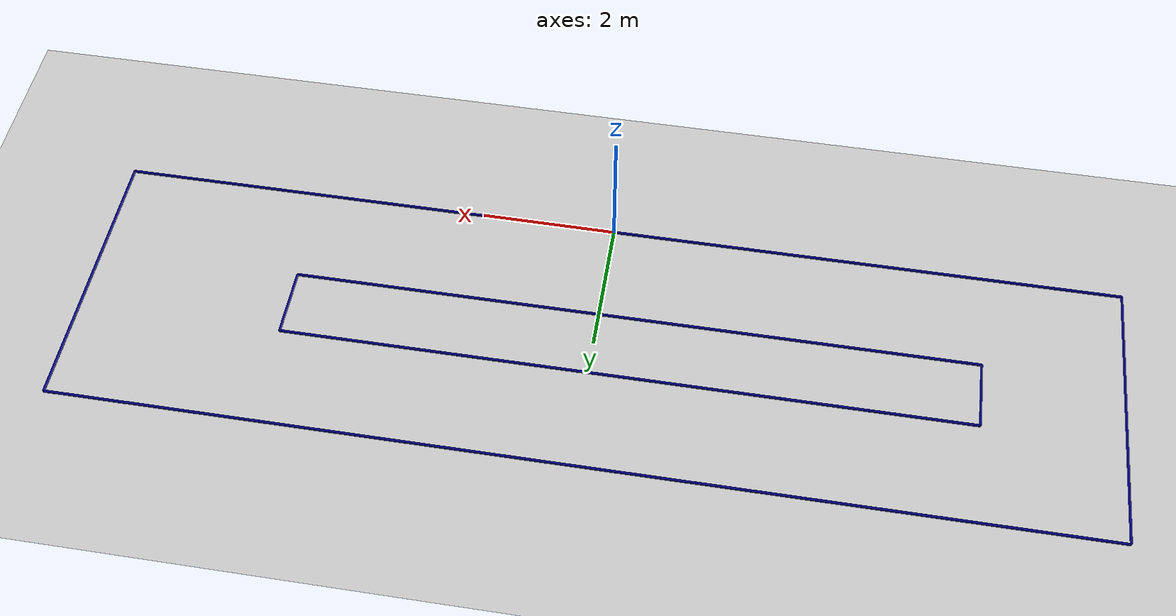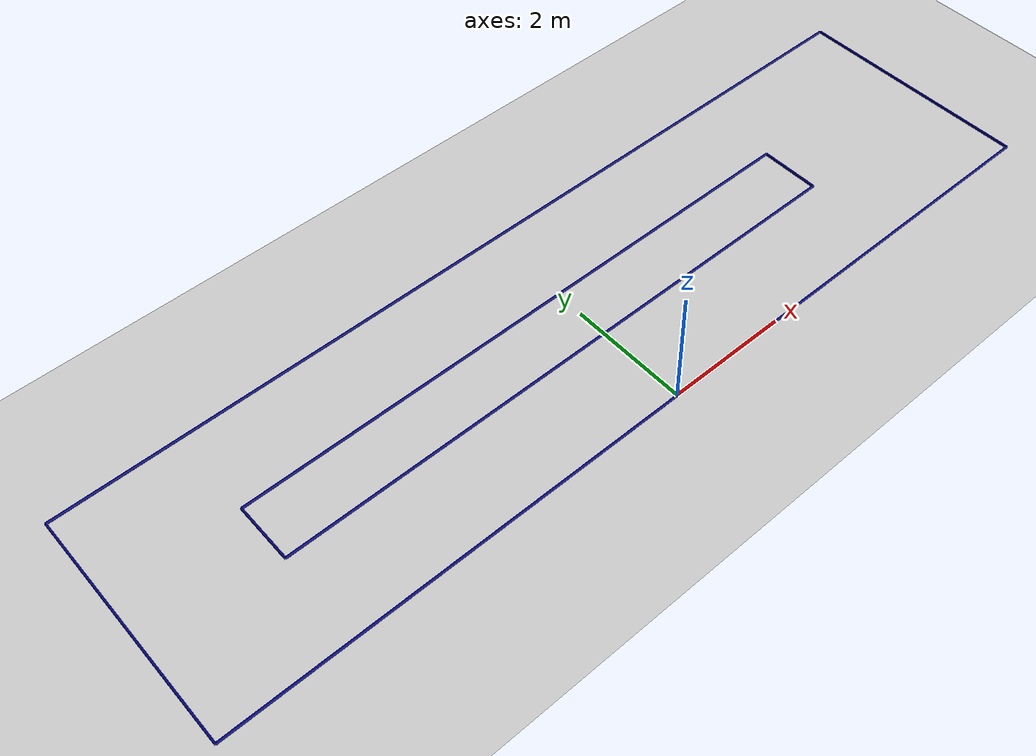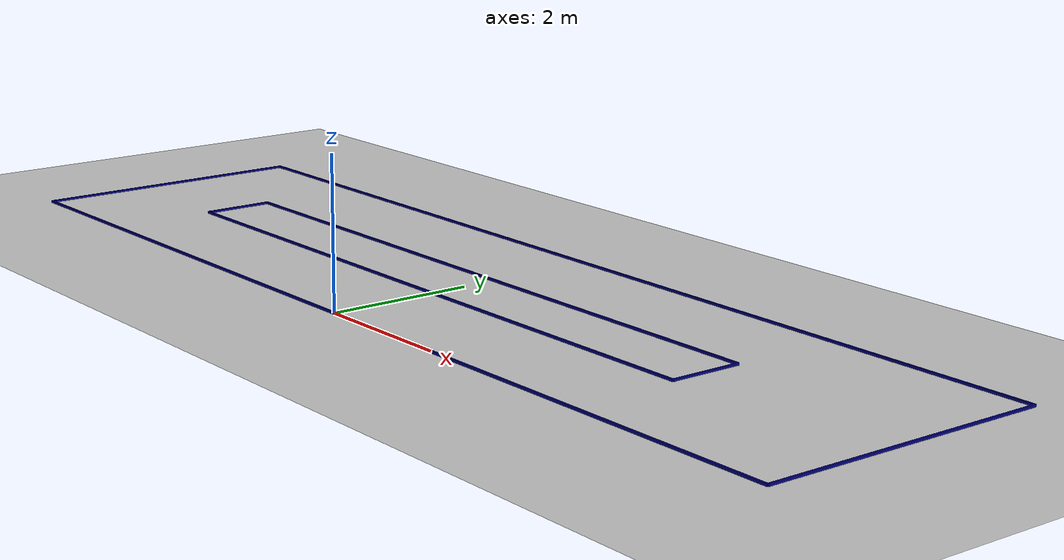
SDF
<?xml version="1.0" ?>
<sdf version="1.6">
  <world name="test">
    <physics name="1ms" type="ignored">
      <max_step_size>0.001</max_step_size>
      <real_time_factor>1.0</real_time_factor>
    </physics>
    <plugin
      filename="ignition-gazebo-physics-system"
      name="ignition::gazebo::systems::Physics">
    </plugin>
    <plugin
      filename="ignition-gazebo-sensors-system"
      name="ignition::gazebo::systems::Sensors">
      <render_engine>ogre2</render_engine>
    </plugin>
    <plugin
      filename="ignition-gazebo-user-commands-system"
      name="ignition::gazebo::systems::UserCommands">
    </plugin>
    <plugin
      filename="ignition-gazebo-scene-broadcaster-system"
      name="ignition::gazebo::systems::SceneBroadcaster">
    </plugin>
    <plugin
      filename="ignition-gazebo-contact-system"
      name="ignition::gazebo::systems::Contact">
    </plugin>
    <plugin
        filename="libignition-gazebo-imu-system.so"
        name="ignition::gazebo::systems::Imu">
    </plugin>

    <light type="directional" name="sun">
      <cast_shadows>true</cast_shadows>
      <pose>0 0 10 0 0 0</pose>
      <diffuse>0.8 0.8 0.8 1</diffuse>
      <specular>0.2 0.2 0.2 1</specular>
      <attenuation>
        <range>1000</range>
        <constant>0.9</constant>
        <linear>0.01</linear>
        <quadratic>0.001</quadratic>
      </attenuation>
      <direction>-0.5 0.1 -0.9</direction>
    </light>

    <model name="ground_plane">
      <static>true</static>
      <link name="link">
        <collision name="collision">
          <geometry>
            <plane>
              <normal>0 0 1</normal>
              <size>100 100</size>
            </plane>
          </geometry>
        </collision>
        <visual name="visual">
          <geometry>
            <plane>
              <normal>0 0 1</normal>
              <size>100 100</size>
            </plane>
          </geometry>
          <material>
            <ambient>0.8 0.8 0.8 1</ambient>
            <diffuse>0.8 0.8 0.8 1</diffuse>
            <specular>0.8 0.8 0.8 1</specular>
          </material>
        </visual>
      </link>
    </model>
  <model name="single-I">
    <static>true</static>

    <link name='left_side'>
      <pose>0 0 0 0 0 1.5707</pose>
      <collision name='collision'>
        <geometry>
         <box>
            <size>0.03 15 .03</size>
         </box>
        </geometry>
      </collision>

      <visual name='lvisual'>
        <geometry>
          <box>
            <size>0.03 15 .03</size>
         </box>
        </geometry>
        <material>
          <ambient>0.0 0.0 0.5 1.0</ambient>
          <diffuse>0.0 0.0 .5 1.00</diffuse>
          <specular>0.0 0.0 .5 1.0</specular>
          <emissive>0.0 0.0 .5 1.0</emissive>
        </material>
      </visual>
    </link>

    <link name='plowed_left_side'>
      <pose>-0.5 1.5 0 0 0 1.5707</pose>
      <collision name='collision'>
        <geometry>
         <box>
            <size>0.03 10 .03</size>
         </box>
        </geometry>
      </collision>

      <visual name='plvisual'>
        <geometry>
          <box>
            <size>0.03 10 .03</size>
         </box>
        </geometry>
        <material>
          <ambient>0.0 0.0 0.5 1.0</ambient>
          <diffuse>0.0 0.0 .5 1.00</diffuse>
          <specular>0.0 0.0 .5 1.0</specular>
          <emissive>0.0 0.0 .5 1.0</emissive>
        </material>
      </visual>
    </link>

    <link name='right_side'>

      <pose>0 4 0 0 0 1.5707</pose>
      <collision name='rcollision'>
        <geometry>
          <box>
            <size>0.03 15 .03</size>
         </box>
        </geometry>
      </collision>

      <visual name='rvisual'>
        <geometry>
          <box>
            <size>0.03 15 .03</size>
         </box>
        </geometry>
        <material>
          <ambient>0.0 0.0 0.5 1.0</ambient>
          <diffuse>0.0 0.0 .5 1.00</diffuse>
          <specular>0.0 0.0 .5 1.0</specular>
          <emissive>0.0 0.0 .5 1.0</emissive>
        </material>
      </visual>
    </link>

    <link name='plowed_right_side'>

      <pose>-0.5 2.5 0 0 0 1.5707</pose>
      <collision name='prcollision'>
        <geometry>
          <box>
            <size>0.03 10 .03</size>
         </box>
        </geometry>
      </collision>

      <visual name='prvisual'>
        <geometry>
          <box>
            <size>0.03 10 .03</size>
         </box>
        </geometry>
        <material>
          <ambient>0.0 0.0 0.5 1.0</ambient>
          <diffuse>0.0 0.0 .5 1.00</diffuse>
          <specular>0.0 0.0 .5 1.0</specular>
          <emissive>0.0 0.0 .5 1.0</emissive>
        </material>
      </visual>

    </link>
    <link name='garage_side'>

      <pose>7.5 2 0 0 0 0</pose>
      <collision name='gcollision'>
        <geometry>
          <box>
            <size>0.03 4 .03</size>
         </box>
        </geometry>
      </collision>

      <visual name='gvisual'>
        <geometry>
          <box>
            <size>0.03 4 .03</size>
         </box>
        </geometry>
        <material>
          <ambient>0.0 0.0 0.5 1.0</ambient>
          <diffuse>0.0 0.0 .5 1.00</diffuse>
          <specular>0.0 0.0 .5 1.0</specular>
          <emissive>0.0 0.0 .5 1.0</emissive>
        </material>
      </visual>

    </link>
    <link name='plowed_garage_side'>

      <pose>4.5 2 0 0 0 0</pose>
      <collision name='pgcollision'>
        <geometry>
          <box>
            <size>0.03 1 .03</size>
         </box>
        </geometry>
      </collision>

      <visual name='pgvisual'>
        <geometry>
          <box>
            <size>0.03 1 .03</size>
         </box>
        </geometry>
        <material>
          <ambient>0.0 0.0 0.5 1.0</ambient>
          <diffuse>0.0 0.0 .5 1.00</diffuse>
          <specular>0.0 0.0 .5 1.0</specular>
          <emissive>0.0 0.0 .5 1.0</emissive>
        </material>
      </visual>

    </link>
    <link name='manuevering_side'>

      <pose>-7.5 2 0 0 0 0</pose>
      <collision name='mcollision'>
        <geometry>
          <box>
            <size>0.03 4 .03</size>
         </box>
        </geometry>
      </collision>

      <visual name='mvisual'>
        <geometry>
          <box>
            <size>0.03 4 .03</size>
         </box>
        </geometry>
        <material>
          <ambient>0.0 0.0 0.5 1.0</ambient>
          <diffuse>0.0 0.0 .5 1.00</diffuse>
          <specular>0.0 0.0 .5 1.0</specular>
          <emissive>0.0 0.0 .5 1.0</emissive>
        </material>
      </visual>
      </link>
      <link name='plowed_manuevering_side'>
      <pose>-5.5 2 0 0 0 0</pose>
      <collision name='mcollision'>
        <geometry>
          <box>
            <size>0.03 1 .03</size>
         </box>
        </geometry>
      </collision>

      <visual name='pmvisual'>
        <geometry>
          <box>
            <size>0.03 1 .03</size>
         </box>
        </geometry>
        <material>
          <ambient>0.0 0.0 0.5 1.0</ambient>
          <diffuse>0.0 0.0 .5 1.00</diffuse>
          <specular>0.0 0.0 .5 1.0</specular>
          <emissive>0.0 0.0 .5 1.0</emissive>
        </material>
      </visual>

    </link>
        <joint type='fixed' name='gr'>
      <child>right_side</child>
      <parent>garage_side</parent>
    </joint>

       <joint type='fixed' name='pgr'>
      <child>plowed_right_side</child>
      <parent>plowed_garage_side</parent>
    </joint>

    <joint type='fixed' name='mr'>
      <child>right_side</child>
      <parent>manuevering_side</parent>
    </joint>

    <joint type='fixed' name='pmr'>
      <child>plowed_right_side</child>
      <parent>plowed_manuevering_side</parent>
    </joint>

    <joint type='fixed' name='gl'>
      <child>left_side</child>
      <parent>garage_side</parent>
    </joint>

    <joint type='fixed' name='pgl'>
      <child>plowed_left_side</child>
      <parent>plowed_garage_side</parent>
    </joint>

    <joint type='fixed' name='ml'>
      <child>manuevering_side</child>
      <parent>left_side</parent>
    </joint>

    <joint type='fixed' name='pml'>
      <child>plowed_manuevering_side</child>
      <parent>plowed_left_side</parent>
    </joint>
  </model>
  </world>
</sdf>
